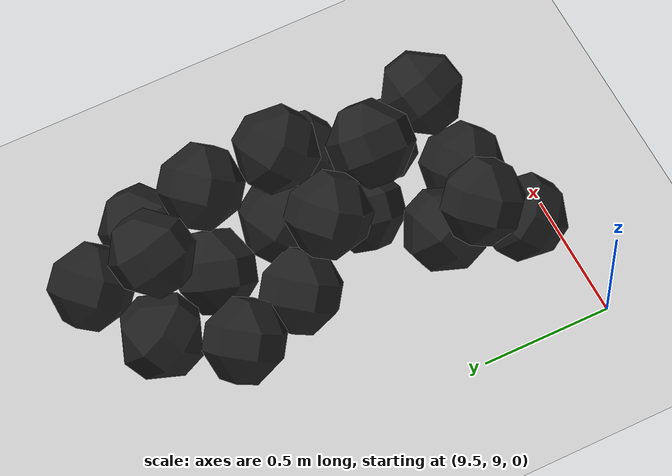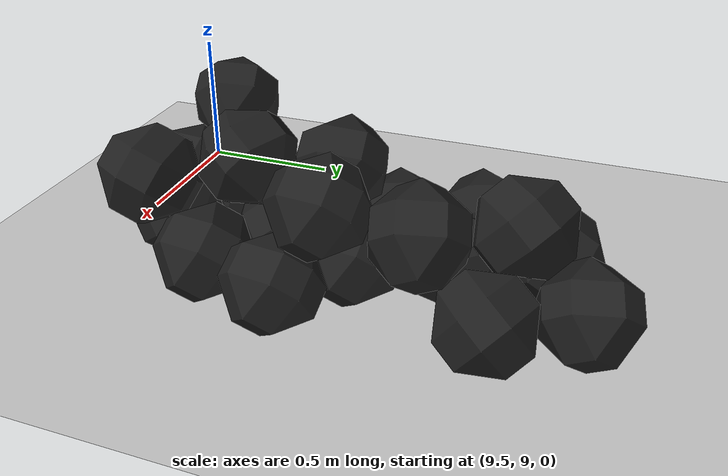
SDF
<sdf version="1.7">
 <world name="default">
  <model name="ground_plane">
   <static>1</static>
   <link name="link">
    <collision name="collision">
     <geometry><plane><normal>0 0 1</normal><size>100 100</size></plane></geometry>
     <surface><friction><ode><mu>100</mu><mu2>50</mu2></ode></friction></surface>
    </collision>
    <visual name="visual">
     <cast_shadows>0</cast_shadows>
     <geometry><plane><normal>0 0 1</normal><size>100 100</size></plane></geometry>
     <material>
      <script><uri>file://media/materials/scripts/gazebo.material</uri><name>Gazebo/Grey</name></script>
     </material>
    </visual>
   </link>
  </model>
  <model name="haoduomiantiaa_13">
   <link name="link_0">
    <inertial>
     <mass>0.2</mass>
     <inertia>
      <ixx>0.166667</ixx>
      <ixy>0</ixy>
      <ixz>0</ixz>
      <iyy>0.166667</iyy>
      <iyz>0</iyz>
      <izz>0.166667</izz>
     </inertia>
    </inertial>
    <visual name="visual">
     <geometry>
      <mesh>
       <uri>/home/lihaoyang/catkin_ws/src/pudong_gazebo/world/stl/haoduomianti.stl</uri>
       <scale>1 1 1</scale>
      </mesh>
     </geometry>
     <material>
      <lighting>1</lighting>
      <script><uri>file://media/materials/scripts/gazebo.material</uri><name>Gazebo/Black</name></script>
      <shader type="pixel"><normal_map>__default__</normal_map></shader>
      <ambient>0.3 0.3 0.3 1</ambient>
      <diffuse>0.7 0.7 0.7 1</diffuse>
      <specular>0.01 0.01 0.01 1</specular>
      <emissive>0 0 0 1</emissive>
     </material>
    </visual>
    <collision name="collision">
     <geometry>
      <mesh>
       <uri>/home/lihaoyang/catkin_ws/src/pudong_gazebo/world/stl/haoduomianti.stl</uri>
       <scale>1 1 1</scale>
      </mesh>
     </geometry>
     <surface>
      <friction>
       <ode><mu>1</mu><mu2>1</mu2><fdir1>0 0 0</fdir1><slip1>0</slip1><slip2>0</slip2></ode>
       <torsional>
        <coefficient>1</coefficient>
        <patch_radius>0</patch_radius>
        <surface_radius>0</surface_radius>
        <use_patch_radius>1</use_patch_radius>
        <ode><slip>0</slip></ode>
       </torsional>
      </friction>
      <bounce><restitution_coefficient>0</restitution_coefficient><threshold>1e+06</threshold></bounce>
      <contact>
       <collide_without_contact>0</collide_without_contact>
       <collide_without_contact_bitmask>1</collide_without_contact_bitmask>
       <collide_bitmask>1</collide_bitmask>
       <ode>
        <soft_cfm>0</soft_cfm>
        <soft_erp>0.2</soft_erp>
        <kp>1e+13</kp>
        <kd>1</kd>
        <max_vel>0.01</max_vel>
        <min_depth>0</min_depth>
       </ode>
       <bullet>
        <split_impulse>1</split_impulse>
        <split_impulse_penetration_threshold>-0.01</split_impulse_penetration_threshold>
        <soft_cfm>0</soft_cfm>
        <soft_erp>0.2</soft_erp>
        <kp>1e+13</kp>
        <kd>1</kd>
       </bullet>
      </contact>
     </surface>
    </collision>
   </link>
   <static>0</static>
   <pose>9.96238 9.47779 -0.082441 0.493908 -0.712701 3.09548</pose>
  </model>
  <model name="haoduomiantiaa_24">
   <link name="link_0">
    <inertial>
     <mass>0.2</mass>
     <inertia>
      <ixx>0.166667</ixx>
      <ixy>0</ixy>
      <ixz>0</ixz>
      <iyy>0.166667</iyy>
      <iyz>0</iyz>
      <izz>0.166667</izz>
     </inertia>
    </inertial>
    <visual name="visual">
     <geometry>
      <mesh>
       <uri>/home/lihaoyang/catkin_ws/src/pudong_gazebo/world/stl/haoduomianti.stl</uri>
       <scale>1 1 1</scale>
      </mesh>
     </geometry>
     <material>
      <lighting>1</lighting>
      <script><uri>file://media/materials/scripts/gazebo.material</uri><name>Gazebo/Black</name></script>
      <shader type="pixel"><normal_map>__default__</normal_map></shader>
      <ambient>0.3 0.3 0.3 1</ambient>
      <diffuse>0.7 0.7 0.7 1</diffuse>
      <specular>0.01 0.01 0.01 1</specular>
      <emissive>0 0 0 1</emissive>
     </material>
    </visual>
    <collision name="collision">
     <geometry>
      <mesh>
       <uri>/home/lihaoyang/catkin_ws/src/pudong_gazebo/world/stl/haoduomianti.stl</uri>
       <scale>1 1 1</scale>
      </mesh>
     </geometry>
     <surface>
      <friction>
       <ode><mu>1</mu><mu2>1</mu2><fdir1>0 0 0</fdir1><slip1>0</slip1><slip2>0</slip2></ode>
       <torsional>
        <coefficient>1</coefficient>
        <patch_radius>0</patch_radius>
        <surface_radius>0</surface_radius>
        <use_patch_radius>1</use_patch_radius>
        <ode><slip>0</slip></ode>
       </torsional>
      </friction>
      <bounce><restitution_coefficient>0</restitution_coefficient><threshold>1e+06</threshold></bounce>
      <contact>
       <collide_without_contact>0</collide_without_contact>
       <collide_without_contact_bitmask>1</collide_without_contact_bitmask>
       <collide_bitmask>1</collide_bitmask>
       <ode>
        <soft_cfm>0</soft_cfm>
        <soft_erp>0.2</soft_erp>
        <kp>1e+13</kp>
        <kd>1</kd>
        <max_vel>0.01</max_vel>
        <min_depth>0</min_depth>
       </ode>
       <bullet>
        <split_impulse>1</split_impulse>
        <split_impulse_penetration_threshold>-0.01</split_impulse_penetration_threshold>
        <soft_cfm>0</soft_cfm>
        <soft_erp>0.2</soft_erp>
        <kp>1e+13</kp>
        <kd>1</kd>
       </bullet>
      </contact>
     </surface>
    </collision>
   </link>
   <static>0</static>
   <pose>10.2743 10.4231 0.084902 0.85737 -0.556659 2.29048</pose>
  </model>
  <model name="haoduomiantiaa_25">
   <link name="link_0">
    <inertial>
     <mass>0.2</mass>
     <inertia>
      <ixx>0.166667</ixx>
      <ixy>0</ixy>
      <ixz>0</ixz>
      <iyy>0.166667</iyy>
      <iyz>0</iyz>
      <izz>0.166667</izz>
     </inertia>
    </inertial>
    <visual name="visual">
     <geometry>
      <mesh>
       <uri>/home/lihaoyang/catkin_ws/src/pudong_gazebo/world/stl/haoduomianti.stl</uri>
       <scale>1 1 1</scale>
      </mesh>
     </geometry>
     <material>
      <lighting>1</lighting>
      <script><uri>file://media/materials/scripts/gazebo.material</uri><name>Gazebo/Black</name></script>
      <shader type="pixel"><normal_map>__default__</normal_map></shader>
      <ambient>0.3 0.3 0.3 1</ambient>
      <diffuse>0.7 0.7 0.7 1</diffuse>
      <specular>0.01 0.01 0.01 1</specular>
      <emissive>0 0 0 1</emissive>
     </material>
    </visual>
    <collision name="collision">
     <geometry>
      <mesh>
       <uri>/home/lihaoyang/catkin_ws/src/pudong_gazebo/world/stl/haoduomianti.stl</uri>
       <scale>1 1 1</scale>
      </mesh>
     </geometry>
     <surface>
      <friction>
       <ode><mu>1</mu><mu2>1</mu2><fdir1>0 0 0</fdir1><slip1>0</slip1><slip2>0</slip2></ode>
       <torsional>
        <coefficient>1</coefficient>
        <patch_radius>0</patch_radius>
        <surface_radius>0</surface_radius>
        <use_patch_radius>1</use_patch_radius>
        <ode><slip>0</slip></ode>
       </torsional>
      </friction>
      <bounce><restitution_coefficient>0</restitution_coefficient><threshold>1e+06</threshold></bounce>
      <contact>
       <collide_without_contact>0</collide_without_contact>
       <collide_without_contact_bitmask>1</collide_without_contact_bitmask>
       <collide_bitmask>1</collide_bitmask>
       <ode>
        <soft_cfm>0</soft_cfm>
        <soft_erp>0.2</soft_erp>
        <kp>1e+13</kp>
        <kd>1</kd>
        <max_vel>0.01</max_vel>
        <min_depth>0</min_depth>
       </ode>
       <bullet>
        <split_impulse>1</split_impulse>
        <split_impulse_penetration_threshold>-0.01</split_impulse_penetration_threshold>
        <soft_cfm>0</soft_cfm>
        <soft_erp>0.2</soft_erp>
        <kp>1e+13</kp>
        <kd>1</kd>
       </bullet>
      </contact>
     </surface>
    </collision>
   </link>
   <static>0</static>
   <pose>9.9079 10.2622 -0.115495 0.785404 -0.615437 1.4444</pose>
  </model>
  <model name="haoduomiantiaa_37">
   <link name="link_0">
    <inertial>
     <mass>0.2</mass>
     <inertia>
      <ixx>0.166667</ixx>
      <ixy>0</ixy>
      <ixz>0</ixz>
      <iyy>0.166667</iyy>
      <iyz>0</iyz>
      <izz>0.166667</izz>
     </inertia>
    </inertial>
    <visual name="visual">
     <geometry>
      <mesh>
       <uri>/home/lihaoyang/catkin_ws/src/pudong_gazebo/world/stl/haoduomianti.stl</uri>
       <scale>1 1 1</scale>
      </mesh>
     </geometry>
     <material>
      <lighting>1</lighting>
      <script><uri>file://media/materials/scripts/gazebo.material</uri><name>Gazebo/Black</name></script>
      <shader type="pixel"><normal_map>__default__</normal_map></shader>
      <ambient>0.3 0.3 0.3 1</ambient>
      <diffuse>0.7 0.7 0.7 1</diffuse>
      <specular>0.01 0.01 0.01 1</specular>
      <emissive>0 0 0 1</emissive>
     </material>
    </visual>
    <collision name="collision">
     <geometry>
      <mesh>
       <uri>/home/lihaoyang/catkin_ws/src/pudong_gazebo/world/stl/haoduomianti.stl</uri>
       <scale>1 1 1</scale>
      </mesh>
     </geometry>
     <surface>
      <friction>
       <ode><mu>1</mu><mu2>1</mu2><fdir1>0 0 0</fdir1><slip1>0</slip1><slip2>0</slip2></ode>
       <torsional>
        <coefficient>1</coefficient>
        <patch_radius>0</patch_radius>
        <surface_radius>0</surface_radius>
        <use_patch_radius>1</use_patch_radius>
        <ode><slip>0</slip></ode>
       </torsional>
      </friction>
      <bounce><restitution_coefficient>0</restitution_coefficient><threshold>1e+06</threshold></bounce>
      <contact>
       <collide_without_contact>0</collide_without_contact>
       <collide_without_contact_bitmask>1</collide_without_contact_bitmask>
       <collide_bitmask>1</collide_bitmask>
       <ode>
        <soft_cfm>0</soft_cfm>
        <soft_erp>0.2</soft_erp>
        <kp>1e+13</kp>
        <kd>1</kd>
        <max_vel>0.01</max_vel>
        <min_depth>0</min_depth>
       </ode>
       <bullet>
        <split_impulse>1</split_impulse>
        <split_impulse_penetration_threshold>-0.01</split_impulse_penetration_threshold>
        <soft_cfm>0</soft_cfm>
        <soft_erp>0.2</soft_erp>
        <kp>1e+13</kp>
        <kd>1</kd>
       </bullet>
      </contact>
     </surface>
    </collision>
   </link>
   <static>0</static>
   <pose>10.0051 9.99559 -0.114513 0.751665 -0.630897 1.45488</pose>
  </model>
  <model name="haoduomiantiaa_42">
   <link name="link_0">
    <inertial>
     <mass>0.2</mass>
     <inertia>
      <ixx>0.166667</ixx>
      <ixy>0</ixy>
      <ixz>0</ixz>
      <iyy>0.166667</iyy>
      <iyz>0</iyz>
      <izz>0.166667</izz>
     </inertia>
    </inertial>
    <visual name="visual">
     <geometry>
      <mesh>
       <uri>/home/lihaoyang/catkin_ws/src/pudong_gazebo/world/stl/haoduomianti.stl</uri>
       <scale>1 1 1</scale>
      </mesh>
     </geometry>
     <material>
      <lighting>1</lighting>
      <script><uri>file://media/materials/scripts/gazebo.material</uri><name>Gazebo/Black</name></script>
      <shader type="pixel"><normal_map>__default__</normal_map></shader>
      <ambient>0.3 0.3 0.3 1</ambient>
      <diffuse>0.7 0.7 0.7 1</diffuse>
      <specular>0.01 0.01 0.01 1</specular>
      <emissive>0 0 0 1</emissive>
     </material>
    </visual>
    <collision name="collision">
     <geometry>
      <mesh>
       <uri>/home/lihaoyang/catkin_ws/src/pudong_gazebo/world/stl/haoduomianti.stl</uri>
       <scale>1 1 1</scale>
      </mesh>
     </geometry>
     <surface>
      <friction>
       <ode><mu>1</mu><mu2>1</mu2><fdir1>0 0 0</fdir1><slip1>0</slip1><slip2>0</slip2></ode>
       <torsional>
        <coefficient>1</coefficient>
        <patch_radius>0</patch_radius>
        <surface_radius>0</surface_radius>
        <use_patch_radius>1</use_patch_radius>
        <ode><slip>0</slip></ode>
       </torsional>
      </friction>
      <bounce><restitution_coefficient>0</restitution_coefficient><threshold>1e+06</threshold></bounce>
      <contact>
       <collide_without_contact>0</collide_without_contact>
       <collide_without_contact_bitmask>1</collide_without_contact_bitmask>
       <collide_bitmask>1</collide_bitmask>
       <ode>
        <soft_cfm>0</soft_cfm>
        <soft_erp>0.2</soft_erp>
        <kp>1e+13</kp>
        <kd>1</kd>
        <max_vel>0.01</max_vel>
        <min_depth>0</min_depth>
       </ode>
       <bullet>
        <split_impulse>1</split_impulse>
        <split_impulse_penetration_threshold>-0.01</split_impulse_penetration_threshold>
        <soft_cfm>0</soft_cfm>
        <soft_erp>0.2</soft_erp>
        <kp>1e+13</kp>
        <kd>1</kd>
       </bullet>
      </contact>
     </surface>
    </collision>
   </link>
   <static>0</static>
   <pose>10.2946 9.92072 -0.115497 0.785424 -0.615457 0.935842</pose>
  </model>
  <model name="haoduomiantiaa_48">
   <link name="link_0">
    <inertial>
     <mass>0.2</mass>
     <inertia>
      <ixx>0.166667</ixx>
      <ixy>0</ixy>
      <ixz>0</ixz>
      <iyy>0.166667</iyy>
      <iyz>0</iyz>
      <izz>0.166667</izz>
     </inertia>
    </inertial>
    <visual name="visual">
     <geometry>
      <mesh>
       <uri>/home/lihaoyang/catkin_ws/src/pudong_gazebo/world/stl/haoduomianti.stl</uri>
       <scale>1 1 1</scale>
      </mesh>
     </geometry>
     <material>
      <lighting>1</lighting>
      <script><uri>file://media/materials/scripts/gazebo.material</uri><name>Gazebo/Black</name></script>
      <shader type="pixel"><normal_map>__default__</normal_map></shader>
      <ambient>0.3 0.3 0.3 1</ambient>
      <diffuse>0.7 0.7 0.7 1</diffuse>
      <specular>0.01 0.01 0.01 1</specular>
      <emissive>0 0 0 1</emissive>
     </material>
    </visual>
    <collision name="collision">
     <geometry>
      <mesh>
       <uri>/home/lihaoyang/catkin_ws/src/pudong_gazebo/world/stl/haoduomianti.stl</uri>
       <scale>1 1 1</scale>
      </mesh>
     </geometry>
     <surface>
      <friction>
       <ode><mu>1</mu><mu2>1</mu2><fdir1>0 0 0</fdir1><slip1>0</slip1><slip2>0</slip2></ode>
       <torsional>
        <coefficient>1</coefficient>
        <patch_radius>0</patch_radius>
        <surface_radius>0</surface_radius>
        <use_patch_radius>1</use_patch_radius>
        <ode><slip>0</slip></ode>
       </torsional>
      </friction>
      <bounce><restitution_coefficient>0</restitution_coefficient><threshold>1e+06</threshold></bounce>
      <contact>
       <collide_without_contact>0</collide_without_contact>
       <collide_without_contact_bitmask>1</collide_without_contact_bitmask>
       <collide_bitmask>1</collide_bitmask>
       <ode>
        <soft_cfm>0</soft_cfm>
        <soft_erp>0.2</soft_erp>
        <kp>1e+13</kp>
        <kd>1</kd>
        <max_vel>0.01</max_vel>
        <min_depth>0</min_depth>
       </ode>
       <bullet>
        <split_impulse>1</split_impulse>
        <split_impulse_penetration_threshold>-0.01</split_impulse_penetration_threshold>
        <soft_cfm>0</soft_cfm>
        <soft_erp>0.2</soft_erp>
        <kp>1e+13</kp>
        <kd>1</kd>
       </bullet>
      </contact>
     </surface>
    </collision>
   </link>
   <static>0</static>
   <pose>10.4324 9.46719 -0.11555 0.785501 -0.615262 0.92615</pose>
  </model>
  <model name="haoduomiantiaa_63">
   <link name="link_0">
    <inertial>
     <mass>0.2</mass>
     <inertia>
      <ixx>0.166667</ixx>
      <ixy>0</ixy>
      <ixz>0</ixz>
      <iyy>0.166667</iyy>
      <iyz>0</iyz>
      <izz>0.166667</izz>
     </inertia>
    </inertial>
    <visual name="visual">
     <geometry>
      <mesh>
       <uri>/home/lihaoyang/catkin_ws/src/pudong_gazebo/world/stl/haoduomianti.stl</uri>
       <scale>1 1 1</scale>
      </mesh>
     </geometry>
     <material>
      <lighting>1</lighting>
      <script><uri>file://media/materials/scripts/gazebo.material</uri><name>Gazebo/Black</name></script>
      <shader type="pixel"><normal_map>__default__</normal_map></shader>
      <ambient>0.3 0.3 0.3 1</ambient>
      <diffuse>0.7 0.7 0.7 1</diffuse>
      <specular>0.01 0.01 0.01 1</specular>
      <emissive>0 0 0 1</emissive>
     </material>
    </visual>
    <collision name="collision">
     <geometry>
      <mesh>
       <uri>/home/lihaoyang/catkin_ws/src/pudong_gazebo/world/stl/haoduomianti.stl</uri>
       <scale>1 1 1</scale>
      </mesh>
     </geometry>
     <surface>
      <friction>
       <ode><mu>1</mu><mu2>1</mu2><fdir1>0 0 0</fdir1><slip1>0</slip1><slip2>0</slip2></ode>
       <torsional>
        <coefficient>1</coefficient>
        <patch_radius>0</patch_radius>
        <surface_radius>0</surface_radius>
        <use_patch_radius>1</use_patch_radius>
        <ode><slip>0</slip></ode>
       </torsional>
      </friction>
      <bounce><restitution_coefficient>0</restitution_coefficient><threshold>1e+06</threshold></bounce>
      <contact>
       <collide_without_contact>0</collide_without_contact>
       <collide_without_contact_bitmask>1</collide_without_contact_bitmask>
       <collide_bitmask>1</collide_bitmask>
       <ode>
        <soft_cfm>0</soft_cfm>
        <soft_erp>0.2</soft_erp>
        <kp>1e+13</kp>
        <kd>1</kd>
        <max_vel>0.01</max_vel>
        <min_depth>0</min_depth>
       </ode>
       <bullet>
        <split_impulse>1</split_impulse>
        <split_impulse_penetration_threshold>-0.01</split_impulse_penetration_threshold>
        <soft_cfm>0</soft_cfm>
        <soft_erp>0.2</soft_erp>
        <kp>1e+13</kp>
        <kd>1</kd>
       </bullet>
      </contact>
     </surface>
    </collision>
   </link>
   <static>0</static>
   <pose>10.2013 9.2257 -0.115505 0.785402 -0.615476 -0.953056</pose>
  </model>
  <model name="haoduomiantiaa_69">
   <link name="link_0">
    <inertial>
     <mass>0.2</mass>
     <inertia>
      <ixx>0.166667</ixx>
      <ixy>0</ixy>
      <ixz>0</ixz>
      <iyy>0.166667</iyy>
      <iyz>0</iyz>
      <izz>0.166667</izz>
     </inertia>
    </inertial>
    <visual name="visual">
     <geometry>
      <mesh>
       <uri>/home/lihaoyang/catkin_ws/src/pudong_gazebo/world/stl/haoduomianti.stl</uri>
       <scale>1 1 1</scale>
      </mesh>
     </geometry>
     <material>
      <lighting>1</lighting>
      <script><uri>file://media/materials/scripts/gazebo.material</uri><name>Gazebo/Black</name></script>
      <shader type="pixel"><normal_map>__default__</normal_map></shader>
      <ambient>0.3 0.3 0.3 1</ambient>
      <diffuse>0.7 0.7 0.7 1</diffuse>
      <specular>0.01 0.01 0.01 1</specular>
      <emissive>0 0 0 1</emissive>
     </material>
    </visual>
    <collision name="collision">
     <geometry>
      <mesh>
       <uri>/home/lihaoyang/catkin_ws/src/pudong_gazebo/world/stl/haoduomianti.stl</uri>
       <scale>1 1 1</scale>
      </mesh>
     </geometry>
     <surface>
      <friction>
       <ode><mu>1</mu><mu2>1</mu2><fdir1>0 0 0</fdir1><slip1>0</slip1><slip2>0</slip2></ode>
       <torsional>
        <coefficient>1</coefficient>
        <patch_radius>0</patch_radius>
        <surface_radius>0</surface_radius>
        <use_patch_radius>1</use_patch_radius>
        <ode><slip>0</slip></ode>
       </torsional>
      </friction>
      <bounce><restitution_coefficient>0</restitution_coefficient><threshold>1e+06</threshold></bounce>
      <contact>
       <collide_without_contact>0</collide_without_contact>
       <collide_without_contact_bitmask>1</collide_without_contact_bitmask>
       <collide_bitmask>1</collide_bitmask>
       <ode>
        <soft_cfm>0</soft_cfm>
        <soft_erp>0.2</soft_erp>
        <kp>1e+13</kp>
        <kd>1</kd>
        <max_vel>0.01</max_vel>
        <min_depth>0</min_depth>
       </ode>
       <bullet>
        <split_impulse>1</split_impulse>
        <split_impulse_penetration_threshold>-0.01</split_impulse_penetration_threshold>
        <soft_cfm>0</soft_cfm>
        <soft_erp>0.2</soft_erp>
        <kp>1e+13</kp>
        <kd>1</kd>
       </bullet>
      </contact>
     </surface>
    </collision>
   </link>
   <static>0</static>
   <pose>10.4359 9.86467 0.128337 0.768328 -0.621157 -1.12386</pose>
  </model>
  <model name="haoduomiantiaa_72">
   <link name="link_0">
    <inertial>
     <mass>0.2</mass>
     <inertia>
      <ixx>0.166667</ixx>
      <ixy>0</ixy>
      <ixz>0</ixz>
      <iyy>0.166667</iyy>
      <iyz>0</iyz>
      <izz>0.166667</izz>
     </inertia>
    </inertial>
    <visual name="visual">
     <geometry>
      <mesh>
       <uri>/home/lihaoyang/catkin_ws/src/pudong_gazebo/world/stl/haoduomianti.stl</uri>
       <scale>1 1 1</scale>
      </mesh>
     </geometry>
     <material>
      <lighting>1</lighting>
      <script><uri>file://media/materials/scripts/gazebo.material</uri><name>Gazebo/Black</name></script>
      <shader type="pixel"><normal_map>__default__</normal_map></shader>
      <ambient>0.3 0.3 0.3 1</ambient>
      <diffuse>0.7 0.7 0.7 1</diffuse>
      <specular>0.01 0.01 0.01 1</specular>
      <emissive>0 0 0 1</emissive>
     </material>
    </visual>
    <collision name="collision">
     <geometry>
      <mesh>
       <uri>/home/lihaoyang/catkin_ws/src/pudong_gazebo/world/stl/haoduomianti.stl</uri>
       <scale>1 1 1</scale>
      </mesh>
     </geometry>
     <surface>
      <friction>
       <ode><mu>1</mu><mu2>1</mu2><fdir1>0 0 0</fdir1><slip1>0</slip1><slip2>0</slip2></ode>
       <torsional>
        <coefficient>1</coefficient>
        <patch_radius>0</patch_radius>
        <surface_radius>0</surface_radius>
        <use_patch_radius>1</use_patch_radius>
        <ode><slip>0</slip></ode>
       </torsional>
      </friction>
      <bounce><restitution_coefficient>0</restitution_coefficient><threshold>1e+06</threshold></bounce>
      <contact>
       <collide_without_contact>0</collide_without_contact>
       <collide_without_contact_bitmask>1</collide_without_contact_bitmask>
       <collide_bitmask>1</collide_bitmask>
       <ode>
        <soft_cfm>0</soft_cfm>
        <soft_erp>0.2</soft_erp>
        <kp>1e+13</kp>
        <kd>1</kd>
        <max_vel>0.01</max_vel>
        <min_depth>0</min_depth>
       </ode>
       <bullet>
        <split_impulse>1</split_impulse>
        <split_impulse_penetration_threshold>-0.01</split_impulse_penetration_threshold>
        <soft_cfm>0</soft_cfm>
        <soft_erp>0.2</soft_erp>
        <kp>1e+13</kp>
        <kd>1</kd>
       </bullet>
      </contact>
     </surface>
    </collision>
   </link>
   <static>0</static>
   <pose>10.1258 9.78918 0.113631 0.704372 -0.513755 1.27496</pose>
  </model>
  <model name="haoduomiantiaa_82">
   <link name="link_0">
    <inertial>
     <mass>0.2</mass>
     <inertia>
      <ixx>0.166667</ixx>
      <ixy>0</ixy>
      <ixz>0</ixz>
      <iyy>0.166667</iyy>
      <iyz>0</iyz>
      <izz>0.166667</izz>
     </inertia>
    </inertial>
    <visual name="visual">
     <geometry>
      <mesh>
       <uri>/home/lihaoyang/catkin_ws/src/pudong_gazebo/world/stl/haoduomianti.stl</uri>
       <scale>1 1 1</scale>
      </mesh>
     </geometry>
     <material>
      <lighting>1</lighting>
      <script><uri>file://media/materials/scripts/gazebo.material</uri><name>Gazebo/Black</name></script>
      <shader type="pixel"><normal_map>__default__</normal_map></shader>
      <ambient>0.3 0.3 0.3 1</ambient>
      <diffuse>0.7 0.7 0.7 1</diffuse>
      <specular>0.01 0.01 0.01 1</specular>
      <emissive>0 0 0 1</emissive>
     </material>
    </visual>
    <collision name="collision">
     <geometry>
      <mesh>
       <uri>/home/lihaoyang/catkin_ws/src/pudong_gazebo/world/stl/haoduomianti.stl</uri>
       <scale>1 1 1</scale>
      </mesh>
     </geometry>
     <surface>
      <friction>
       <ode><mu>1</mu><mu2>1</mu2><fdir1>0 0 0</fdir1><slip1>0</slip1><slip2>0</slip2></ode>
       <torsional>
        <coefficient>1</coefficient>
        <patch_radius>0</patch_radius>
        <surface_radius>0</surface_radius>
        <use_patch_radius>1</use_patch_radius>
        <ode><slip>0</slip></ode>
       </torsional>
      </friction>
      <bounce><restitution_coefficient>0</restitution_coefficient><threshold>1e+06</threshold></bounce>
      <contact>
       <collide_without_contact>0</collide_without_contact>
       <collide_without_contact_bitmask>1</collide_without_contact_bitmask>
       <collide_bitmask>1</collide_bitmask>
       <ode>
        <soft_cfm>0</soft_cfm>
        <soft_erp>0.2</soft_erp>
        <kp>1e+13</kp>
        <kd>1</kd>
        <max_vel>0.01</max_vel>
        <min_depth>0</min_depth>
       </ode>
       <bullet>
        <split_impulse>1</split_impulse>
        <split_impulse_penetration_threshold>-0.01</split_impulse_penetration_threshold>
        <soft_cfm>0</soft_cfm>
        <soft_erp>0.2</soft_erp>
        <kp>1e+13</kp>
        <kd>1</kd>
       </bullet>
      </contact>
     </surface>
    </collision>
   </link>
   <static>0</static>
   <pose>10.3702 9.3369 0.135077 1.07136 -0.527132 0.338742</pose>
  </model>
  <model name="haoduomiantiaa_84">
   <link name="link_0">
    <inertial>
     <mass>0.2</mass>
     <inertia>
      <ixx>0.166667</ixx>
      <ixy>0</ixy>
      <ixz>0</ixz>
      <iyy>0.166667</iyy>
      <iyz>0</iyz>
      <izz>0.166667</izz>
     </inertia>
    </inertial>
    <visual name="visual">
     <geometry>
      <mesh>
       <uri>/home/lihaoyang/catkin_ws/src/pudong_gazebo/world/stl/haoduomianti.stl</uri>
       <scale>1 1 1</scale>
      </mesh>
     </geometry>
     <material>
      <lighting>1</lighting>
      <script><uri>file://media/materials/scripts/gazebo.material</uri><name>Gazebo/Black</name></script>
      <shader type="pixel"><normal_map>__default__</normal_map></shader>
      <ambient>0.3 0.3 0.3 1</ambient>
      <diffuse>0.7 0.7 0.7 1</diffuse>
      <specular>0.01 0.01 0.01 1</specular>
      <emissive>0 0 0 1</emissive>
     </material>
    </visual>
    <collision name="collision">
     <geometry>
      <mesh>
       <uri>/home/lihaoyang/catkin_ws/src/pudong_gazebo/world/stl/haoduomianti.stl</uri>
       <scale>1 1 1</scale>
      </mesh>
     </geometry>
     <surface>
      <friction>
       <ode><mu>1</mu><mu2>1</mu2><fdir1>0 0 0</fdir1><slip1>0</slip1><slip2>0</slip2></ode>
       <torsional>
        <coefficient>1</coefficient>
        <patch_radius>0</patch_radius>
        <surface_radius>0</surface_radius>
        <use_patch_radius>1</use_patch_radius>
        <ode><slip>0</slip></ode>
       </torsional>
      </friction>
      <bounce><restitution_coefficient>0</restitution_coefficient><threshold>1e+06</threshold></bounce>
      <contact>
       <collide_without_contact>0</collide_without_contact>
       <collide_without_contact_bitmask>1</collide_without_contact_bitmask>
       <collide_bitmask>1</collide_bitmask>
       <ode>
        <soft_cfm>0</soft_cfm>
        <soft_erp>0.2</soft_erp>
        <kp>1e+13</kp>
        <kd>1</kd>
        <max_vel>0.01</max_vel>
        <min_depth>0</min_depth>
       </ode>
       <bullet>
        <split_impulse>1</split_impulse>
        <split_impulse_penetration_threshold>-0.01</split_impulse_penetration_threshold>
        <soft_cfm>0</soft_cfm>
        <soft_erp>0.2</soft_erp>
        <kp>1e+13</kp>
        <kd>1</kd>
       </bullet>
      </contact>
     </surface>
    </collision>
   </link>
   <static>0</static>
   <pose>10.4263 10.1593 0.093804 0.82325 -0.675491 -2.89019</pose>
  </model>
  <model name="haoduomiantiaa_87">
   <link name="link_0">
    <inertial>
     <mass>0.2</mass>
     <inertia>
      <ixx>0.166667</ixx>
      <ixy>0</ixy>
      <ixz>0</ixz>
      <iyy>0.166667</iyy>
      <iyz>0</iyz>
      <izz>0.166667</izz>
     </inertia>
    </inertial>
    <visual name="visual">
     <geometry>
      <mesh>
       <uri>/home/lihaoyang/catkin_ws/src/pudong_gazebo/world/stl/haoduomianti.stl</uri>
       <scale>1 1 1</scale>
      </mesh>
     </geometry>
     <material>
      <lighting>1</lighting>
      <script><uri>file://media/materials/scripts/gazebo.material</uri><name>Gazebo/Black</name></script>
      <shader type="pixel"><normal_map>__default__</normal_map></shader>
      <ambient>0.3 0.3 0.3 1</ambient>
      <diffuse>0.7 0.7 0.7 1</diffuse>
      <specular>0.01 0.01 0.01 1</specular>
      <emissive>0 0 0 1</emissive>
     </material>
    </visual>
    <collision name="collision">
     <geometry>
      <mesh>
       <uri>/home/lihaoyang/catkin_ws/src/pudong_gazebo/world/stl/haoduomianti.stl</uri>
       <scale>1 1 1</scale>
      </mesh>
     </geometry>
     <surface>
      <friction>
       <ode><mu>1</mu><mu2>1</mu2><fdir1>0 0 0</fdir1><slip1>0</slip1><slip2>0</slip2></ode>
       <torsional>
        <coefficient>1</coefficient>
        <patch_radius>0</patch_radius>
        <surface_radius>0</surface_radius>
        <use_patch_radius>1</use_patch_radius>
        <ode><slip>0</slip></ode>
       </torsional>
      </friction>
      <bounce><restitution_coefficient>0</restitution_coefficient><threshold>1e+06</threshold></bounce>
      <contact>
       <collide_without_contact>0</collide_without_contact>
       <collide_without_contact_bitmask>1</collide_without_contact_bitmask>
       <collide_bitmask>1</collide_bitmask>
       <ode>
        <soft_cfm>0</soft_cfm>
        <soft_erp>0.2</soft_erp>
        <kp>1e+13</kp>
        <kd>1</kd>
        <max_vel>0.01</max_vel>
        <min_depth>0</min_depth>
       </ode>
       <bullet>
        <split_impulse>1</split_impulse>
        <split_impulse_penetration_threshold>-0.01</split_impulse_penetration_threshold>
        <soft_cfm>0</soft_cfm>
        <soft_erp>0.2</soft_erp>
        <kp>1e+13</kp>
        <kd>1</kd>
       </bullet>
      </contact>
     </surface>
    </collision>
   </link>
   <static>0</static>
   <pose>10.2018 9.63587 -0.115444 0.785459 -0.615489 -2.26171</pose>
  </model>
  <model name="haoduomiantiaa_98">
   <link name="link_0">
    <inertial>
     <mass>0.2</mass>
     <inertia>
      <ixx>0.166667</ixx>
      <ixy>0</ixy>
      <ixz>0</ixz>
      <iyy>0.166667</iyy>
      <iyz>0</iyz>
      <izz>0.166667</izz>
     </inertia>
    </inertial>
    <visual name="visual">
     <geometry>
      <mesh>
       <uri>/home/lihaoyang/catkin_ws/src/pudong_gazebo/world/stl/haoduomianti.stl</uri>
       <scale>1 1 1</scale>
      </mesh>
     </geometry>
     <material>
      <lighting>1</lighting>
      <script><uri>file://media/materials/scripts/gazebo.material</uri><name>Gazebo/Black</name></script>
      <shader type="pixel"><normal_map>__default__</normal_map></shader>
      <ambient>0.3 0.3 0.3 1</ambient>
      <diffuse>0.7 0.7 0.7 1</diffuse>
      <specular>0.01 0.01 0.01 1</specular>
      <emissive>0 0 0 1</emissive>
     </material>
    </visual>
    <collision name="collision">
     <geometry>
      <mesh>
       <uri>/home/lihaoyang/catkin_ws/src/pudong_gazebo/world/stl/haoduomianti.stl</uri>
       <scale>1 1 1</scale>
      </mesh>
     </geometry>
     <surface>
      <friction>
       <ode><mu>1</mu><mu2>1</mu2><fdir1>0 0 0</fdir1><slip1>0</slip1><slip2>0</slip2></ode>
       <torsional>
        <coefficient>1</coefficient>
        <patch_radius>0</patch_radius>
        <surface_radius>0</surface_radius>
        <use_patch_radius>1</use_patch_radius>
        <ode><slip>0</slip></ode>
       </torsional>
      </friction>
      <bounce><restitution_coefficient>0</restitution_coefficient><threshold>1e+06</threshold></bounce>
      <contact>
       <collide_without_contact>0</collide_without_contact>
       <collide_without_contact_bitmask>1</collide_without_contact_bitmask>
       <collide_bitmask>1</collide_bitmask>
       <ode>
        <soft_cfm>0</soft_cfm>
        <soft_erp>0.2</soft_erp>
        <kp>1e+13</kp>
        <kd>1</kd>
        <max_vel>0.01</max_vel>
        <min_depth>0</min_depth>
       </ode>
       <bullet>
        <split_impulse>1</split_impulse>
        <split_impulse_penetration_threshold>-0.01</split_impulse_penetration_threshold>
        <soft_cfm>0</soft_cfm>
        <soft_erp>0.2</soft_erp>
        <kp>1e+13</kp>
        <kd>1</kd>
       </bullet>
      </contact>
     </surface>
    </collision>
   </link>
   <static>0</static>
   <pose>9.91207 9.12632 -0.113509 0.822301 -0.632409 -1.18919</pose>
  </model>
  <model name="haoduomiantiaa_105">
   <link name="link_0">
    <inertial>
     <mass>0.2</mass>
     <inertia>
      <ixx>0.166667</ixx>
      <ixy>0</ixy>
      <ixz>0</ixz>
      <iyy>0.166667</iyy>
      <iyz>0</iyz>
      <izz>0.166667</izz>
     </inertia>
    </inertial>
    <visual name="visual">
     <geometry>
      <mesh>
       <uri>/home/lihaoyang/catkin_ws/src/pudong_gazebo/world/stl/haoduomianti.stl</uri>
       <scale>1 1 1</scale>
      </mesh>
     </geometry>
     <material>
      <lighting>1</lighting>
      <script><uri>file://media/materials/scripts/gazebo.material</uri><name>Gazebo/Black</name></script>
      <shader type="pixel"><normal_map>__default__</normal_map></shader>
      <ambient>0.3 0.3 0.3 1</ambient>
      <diffuse>0.7 0.7 0.7 1</diffuse>
      <specular>0.01 0.01 0.01 1</specular>
      <emissive>0 0 0 1</emissive>
     </material>
    </visual>
    <collision name="collision">
     <geometry>
      <mesh>
       <uri>/home/lihaoyang/catkin_ws/src/pudong_gazebo/world/stl/haoduomianti.stl</uri>
       <scale>1 1 1</scale>
      </mesh>
     </geometry>
     <surface>
      <friction>
       <ode><mu>1</mu><mu2>1</mu2><fdir1>0 0 0</fdir1><slip1>0</slip1><slip2>0</slip2></ode>
       <torsional>
        <coefficient>1</coefficient>
        <patch_radius>0</patch_radius>
        <surface_radius>0</surface_radius>
        <use_patch_radius>1</use_patch_radius>
        <ode><slip>0</slip></ode>
       </torsional>
      </friction>
      <bounce><restitution_coefficient>0</restitution_coefficient><threshold>1e+06</threshold></bounce>
      <contact>
       <collide_without_contact>0</collide_without_contact>
       <collide_without_contact_bitmask>1</collide_without_contact_bitmask>
       <collide_bitmask>1</collide_bitmask>
       <ode>
        <soft_cfm>0</soft_cfm>
        <soft_erp>0.2</soft_erp>
        <kp>1e+13</kp>
        <kd>1</kd>
        <max_vel>0.01</max_vel>
        <min_depth>0</min_depth>
       </ode>
       <bullet>
        <split_impulse>1</split_impulse>
        <split_impulse_penetration_threshold>-0.01</split_impulse_penetration_threshold>
        <soft_cfm>0</soft_cfm>
        <soft_erp>0.2</soft_erp>
        <kp>1e+13</kp>
        <kd>1</kd>
       </bullet>
      </contact>
     </surface>
    </collision>
   </link>
   <static>0</static>
   <pose>10.5183 9.74175 -0.114878 0.797678 -0.621323 -1.17442</pose>
  </model>
  <model name="haoduomiantiaa_107">
   <link name="link_0">
    <inertial>
     <mass>0.2</mass>
     <inertia>
      <ixx>0.166667</ixx>
      <ixy>0</ixy>
      <ixz>0</ixz>
      <iyy>0.166667</iyy>
      <iyz>0</iyz>
      <izz>0.166667</izz>
     </inertia>
    </inertial>
    <visual name="visual">
     <geometry>
      <mesh>
       <uri>/home/lihaoyang/catkin_ws/src/pudong_gazebo/world/stl/haoduomianti.stl</uri>
       <scale>1 1 1</scale>
      </mesh>
     </geometry>
     <material>
      <lighting>1</lighting>
      <script><uri>file://media/materials/scripts/gazebo.material</uri><name>Gazebo/Black</name></script>
      <shader type="pixel"><normal_map>__default__</normal_map></shader>
      <ambient>0.3 0.3 0.3 1</ambient>
      <diffuse>0.7 0.7 0.7 1</diffuse>
      <specular>0.01 0.01 0.01 1</specular>
      <emissive>0 0 0 1</emissive>
     </material>
    </visual>
    <collision name="collision">
     <geometry>
      <mesh>
       <uri>/home/lihaoyang/catkin_ws/src/pudong_gazebo/world/stl/haoduomianti.stl</uri>
       <scale>1 1 1</scale>
      </mesh>
     </geometry>
     <surface>
      <friction>
       <ode><mu>1</mu><mu2>1</mu2><fdir1>0 0 0</fdir1><slip1>0</slip1><slip2>0</slip2></ode>
       <torsional>
        <coefficient>1</coefficient>
        <patch_radius>0</patch_radius>
        <surface_radius>0</surface_radius>
        <use_patch_radius>1</use_patch_radius>
        <ode><slip>0</slip></ode>
       </torsional>
      </friction>
      <bounce><restitution_coefficient>0</restitution_coefficient><threshold>1e+06</threshold></bounce>
      <contact>
       <collide_without_contact>0</collide_without_contact>
       <collide_without_contact_bitmask>1</collide_without_contact_bitmask>
       <collide_bitmask>1</collide_bitmask>
       <ode>
        <soft_cfm>0</soft_cfm>
        <soft_erp>0.2</soft_erp>
        <kp>1e+13</kp>
        <kd>1</kd>
        <max_vel>0.01</max_vel>
        <min_depth>0</min_depth>
       </ode>
       <bullet>
        <split_impulse>1</split_impulse>
        <split_impulse_penetration_threshold>-0.01</split_impulse_penetration_threshold>
        <soft_cfm>0</soft_cfm>
        <soft_erp>0.2</soft_erp>
        <kp>1e+13</kp>
        <kd>1</kd>
       </bullet>
      </contact>
     </surface>
    </collision>
   </link>
   <static>0</static>
   <pose>10.356 10.6552 -0.115529 0.785372 -0.615499 -0.808703</pose>
  </model>
  <model name="haoduomiantiaa_112">
   <link name="link_0">
    <inertial>
     <mass>0.2</mass>
     <inertia>
      <ixx>0.166667</ixx>
      <ixy>0</ixy>
      <ixz>0</ixz>
      <iyy>0.166667</iyy>
      <iyz>0</iyz>
      <izz>0.166667</izz>
     </inertia>
    </inertial>
    <visual name="visual">
     <geometry>
      <mesh>
       <uri>/home/lihaoyang/catkin_ws/src/pudong_gazebo/world/stl/haoduomianti.stl</uri>
       <scale>1 1 1</scale>
      </mesh>
     </geometry>
     <material>
      <lighting>1</lighting>
      <script><uri>file://media/materials/scripts/gazebo.material</uri><name>Gazebo/Black</name></script>
      <shader type="pixel"><normal_map>__default__</normal_map></shader>
      <ambient>0.3 0.3 0.3 1</ambient>
      <diffuse>0.7 0.7 0.7 1</diffuse>
      <specular>0.01 0.01 0.01 1</specular>
      <emissive>0 0 0 1</emissive>
     </material>
    </visual>
    <collision name="collision">
     <geometry>
      <mesh>
       <uri>/home/lihaoyang/catkin_ws/src/pudong_gazebo/world/stl/haoduomianti.stl</uri>
       <scale>1 1 1</scale>
      </mesh>
     </geometry>
     <surface>
      <friction>
       <ode><mu>1</mu><mu2>1</mu2><fdir1>0 0 0</fdir1><slip1>0</slip1><slip2>0</slip2></ode>
       <torsional>
        <coefficient>1</coefficient>
        <patch_radius>0</patch_radius>
        <surface_radius>0</surface_radius>
        <use_patch_radius>1</use_patch_radius>
        <ode><slip>0</slip></ode>
       </torsional>
      </friction>
      <bounce><restitution_coefficient>0</restitution_coefficient><threshold>1e+06</threshold></bounce>
      <contact>
       <collide_without_contact>0</collide_without_contact>
       <collide_without_contact_bitmask>1</collide_without_contact_bitmask>
       <collide_bitmask>1</collide_bitmask>
       <ode>
        <soft_cfm>0</soft_cfm>
        <soft_erp>0.2</soft_erp>
        <kp>1e+13</kp>
        <kd>1</kd>
        <max_vel>0.01</max_vel>
        <min_depth>0</min_depth>
       </ode>
       <bullet>
        <split_impulse>1</split_impulse>
        <split_impulse_penetration_threshold>-0.01</split_impulse_penetration_threshold>
        <soft_cfm>0</soft_cfm>
        <soft_erp>0.2</soft_erp>
        <kp>1e+13</kp>
        <kd>1</kd>
       </bullet>
      </contact>
     </surface>
    </collision>
   </link>
   <static>0</static>
   <pose>10.0599 10.5185 -0.115489 0.785409 -0.61544 0.694634</pose>
  </model>
  <model name="haoduomiantiaa_113">
   <link name="link_0">
    <inertial>
     <mass>0.2</mass>
     <inertia>
      <ixx>0.166667</ixx>
      <ixy>0</ixy>
      <ixz>0</ixz>
      <iyy>0.166667</iyy>
      <iyz>0</iyz>
      <izz>0.166667</izz>
     </inertia>
    </inertial>
    <visual name="visual">
     <geometry>
      <mesh>
       <uri>/home/lihaoyang/catkin_ws/src/pudong_gazebo/world/stl/haoduomianti.stl</uri>
       <scale>1 1 1</scale>
      </mesh>
     </geometry>
     <material>
      <lighting>1</lighting>
      <script><uri>file://media/materials/scripts/gazebo.material</uri><name>Gazebo/Black</name></script>
      <shader type="pixel"><normal_map>__default__</normal_map></shader>
      <ambient>0.3 0.3 0.3 1</ambient>
      <diffuse>0.7 0.7 0.7 1</diffuse>
      <specular>0.01 0.01 0.01 1</specular>
      <emissive>0 0 0 1</emissive>
     </material>
    </visual>
    <collision name="collision">
     <geometry>
      <mesh>
       <uri>/home/lihaoyang/catkin_ws/src/pudong_gazebo/world/stl/haoduomianti.stl</uri>
       <scale>1 1 1</scale>
      </mesh>
     </geometry>
     <surface>
      <friction>
       <ode><mu>1</mu><mu2>1</mu2><fdir1>0 0 0</fdir1><slip1>0</slip1><slip2>0</slip2></ode>
       <torsional>
        <coefficient>1</coefficient>
        <patch_radius>0</patch_radius>
        <surface_radius>0</surface_radius>
        <use_patch_radius>1</use_patch_radius>
        <ode><slip>0</slip></ode>
       </torsional>
      </friction>
      <bounce><restitution_coefficient>0</restitution_coefficient><threshold>1e+06</threshold></bounce>
      <contact>
       <collide_without_contact>0</collide_without_contact>
       <collide_without_contact_bitmask>1</collide_without_contact_bitmask>
       <collide_bitmask>1</collide_bitmask>
       <ode>
        <soft_cfm>0</soft_cfm>
        <soft_erp>0.2</soft_erp>
        <kp>1e+13</kp>
        <kd>1</kd>
        <max_vel>0.01</max_vel>
        <min_depth>0</min_depth>
       </ode>
       <bullet>
        <split_impulse>1</split_impulse>
        <split_impulse_penetration_threshold>-0.01</split_impulse_penetration_threshold>
        <soft_cfm>0</soft_cfm>
        <soft_erp>0.2</soft_erp>
        <kp>1e+13</kp>
        <kd>1</kd>
       </bullet>
      </contact>
     </surface>
    </collision>
   </link>
   <static>0</static>
   <pose>10.2082 10.2279 -0.115461 0.784527 -0.615872 -0.304355</pose>
  </model>
  <model name="haoduomiantiaa_121">
   <link name="link_0">
    <inertial>
     <mass>0.2</mass>
     <inertia>
      <ixx>0.166667</ixx>
      <ixy>0</ixy>
      <ixz>0</ixz>
      <iyy>0.166667</iyy>
      <iyz>0</iyz>
      <izz>0.166667</izz>
     </inertia>
    </inertial>
    <visual name="visual">
     <geometry>
      <mesh>
       <uri>/home/lihaoyang/catkin_ws/src/pudong_gazebo/world/stl/haoduomianti.stl</uri>
       <scale>1 1 1</scale>
      </mesh>
     </geometry>
     <material>
      <lighting>1</lighting>
      <script><uri>file://media/materials/scripts/gazebo.material</uri><name>Gazebo/Black</name></script>
      <shader type="pixel"><normal_map>__default__</normal_map></shader>
      <ambient>0.3 0.3 0.3 1</ambient>
      <diffuse>0.7 0.7 0.7 1</diffuse>
      <specular>0.01 0.01 0.01 1</specular>
      <emissive>0 0 0 1</emissive>
     </material>
    </visual>
    <collision name="collision">
     <geometry>
      <mesh>
       <uri>/home/lihaoyang/catkin_ws/src/pudong_gazebo/world/stl/haoduomianti.stl</uri>
       <scale>1 1 1</scale>
      </mesh>
     </geometry>
     <surface>
      <friction>
       <ode><mu>1</mu><mu2>1</mu2><fdir1>0 0 0</fdir1><slip1>0</slip1><slip2>0</slip2></ode>
       <torsional>
        <coefficient>1</coefficient>
        <patch_radius>0</patch_radius>
        <surface_radius>0</surface_radius>
        <use_patch_radius>1</use_patch_radius>
        <ode><slip>0</slip></ode>
       </torsional>
      </friction>
      <bounce><restitution_coefficient>0</restitution_coefficient><threshold>1e+06</threshold></bounce>
      <contact>
       <collide_without_contact>0</collide_without_contact>
       <collide_without_contact_bitmask>1</collide_without_contact_bitmask>
       <collide_bitmask>1</collide_bitmask>
       <ode>
        <soft_cfm>0</soft_cfm>
        <soft_erp>0.2</soft_erp>
        <kp>1e+13</kp>
        <kd>1</kd>
        <max_vel>0.01</max_vel>
        <min_depth>0</min_depth>
       </ode>
       <bullet>
        <split_impulse>1</split_impulse>
        <split_impulse_penetration_threshold>-0.01</split_impulse_penetration_threshold>
        <soft_cfm>0</soft_cfm>
        <soft_erp>0.2</soft_erp>
        <kp>1e+13</kp>
        <kd>1</kd>
       </bullet>
      </contact>
     </surface>
    </collision>
   </link>
   <static>0</static>
   <pose>10.4934 10.3887 -0.115566 0.785417 -0.615402 2.21689</pose>
  </model>
  <model name="haoduomiantiaa_126">
   <link name="link_0">
    <inertial>
     <mass>0.2</mass>
     <inertia>
      <ixx>0.166667</ixx>
      <ixy>0</ixy>
      <ixz>0</ixz>
      <iyy>0.166667</iyy>
      <iyz>0</iyz>
      <izz>0.166667</izz>
     </inertia>
    </inertial>
    <visual name="visual">
     <geometry>
      <mesh>
       <uri>/home/lihaoyang/catkin_ws/src/pudong_gazebo/world/stl/haoduomianti.stl</uri>
       <scale>1 1 1</scale>
      </mesh>
     </geometry>
     <material>
      <lighting>1</lighting>
      <script><uri>file://media/materials/scripts/gazebo.material</uri><name>Gazebo/Black</name></script>
      <shader type="pixel"><normal_map>__default__</normal_map></shader>
      <ambient>0.3 0.3 0.3 1</ambient>
      <diffuse>0.7 0.7 0.7 1</diffuse>
      <specular>0.01 0.01 0.01 1</specular>
      <emissive>0 0 0 1</emissive>
     </material>
    </visual>
    <collision name="collision">
     <geometry>
      <mesh>
       <uri>/home/lihaoyang/catkin_ws/src/pudong_gazebo/world/stl/haoduomianti.stl</uri>
       <scale>1 1 1</scale>
      </mesh>
     </geometry>
     <surface>
      <friction>
       <ode><mu>1</mu><mu2>1</mu2><fdir1>0 0 0</fdir1><slip1>0</slip1><slip2>0</slip2></ode>
       <torsional>
        <coefficient>1</coefficient>
        <patch_radius>0</patch_radius>
        <surface_radius>0</surface_radius>
        <use_patch_radius>1</use_patch_radius>
        <ode><slip>0</slip></ode>
       </torsional>
      </friction>
      <bounce><restitution_coefficient>0</restitution_coefficient><threshold>1e+06</threshold></bounce>
      <contact>
       <collide_without_contact>0</collide_without_contact>
       <collide_without_contact_bitmask>1</collide_without_contact_bitmask>
       <collide_bitmask>1</collide_bitmask>
       <ode>
        <soft_cfm>0</soft_cfm>
        <soft_erp>0.2</soft_erp>
        <kp>1e+13</kp>
        <kd>1</kd>
        <max_vel>0.01</max_vel>
        <min_depth>0</min_depth>
       </ode>
       <bullet>
        <split_impulse>1</split_impulse>
        <split_impulse_penetration_threshold>-0.01</split_impulse_penetration_threshold>
        <soft_cfm>0</soft_cfm>
        <soft_erp>0.2</soft_erp>
        <kp>1e+13</kp>
        <kd>1</kd>
       </bullet>
      </contact>
     </surface>
    </collision>
   </link>
   <static>0</static>
   <pose>9.92591 9.31362 0.180464 0.88675 -0.470565 -2.87269</pose>
  </model>
  <model name="haoduomiantiaa_128">
   <link name="link_0">
    <inertial>
     <mass>0.2</mass>
     <inertia>
      <ixx>0.166667</ixx>
      <ixy>0</ixy>
      <ixz>0</ixz>
      <iyy>0.166667</iyy>
      <iyz>0</iyz>
      <izz>0.166667</izz>
     </inertia>
    </inertial>
    <visual name="visual">
     <geometry>
      <mesh>
       <uri>/home/lihaoyang/catkin_ws/src/pudong_gazebo/world/stl/haoduomianti.stl</uri>
       <scale>1 1 1</scale>
      </mesh>
     </geometry>
     <material>
      <lighting>1</lighting>
      <script><uri>file://media/materials/scripts/gazebo.material</uri><name>Gazebo/Black</name></script>
      <shader type="pixel"><normal_map>__default__</normal_map></shader>
      <ambient>0.3 0.3 0.3 1</ambient>
      <diffuse>0.7 0.7 0.7 1</diffuse>
      <specular>0.01 0.01 0.01 1</specular>
      <emissive>0 0 0 1</emissive>
     </material>
    </visual>
    <collision name="collision">
     <geometry>
      <mesh>
       <uri>/home/lihaoyang/catkin_ws/src/pudong_gazebo/world/stl/haoduomianti.stl</uri>
       <scale>1 1 1</scale>
      </mesh>
     </geometry>
     <surface>
      <friction>
       <ode><mu>1</mu><mu2>1</mu2><fdir1>0 0 0</fdir1><slip1>0</slip1><slip2>0</slip2></ode>
       <torsional>
        <coefficient>1</coefficient>
        <patch_radius>0</patch_radius>
        <surface_radius>0</surface_radius>
        <use_patch_radius>1</use_patch_radius>
        <ode><slip>0</slip></ode>
       </torsional>
      </friction>
      <bounce><restitution_coefficient>0</restitution_coefficient><threshold>1e+06</threshold></bounce>
      <contact>
       <collide_without_contact>0</collide_without_contact>
       <collide_without_contact_bitmask>1</collide_without_contact_bitmask>
       <collide_bitmask>1</collide_bitmask>
       <ode>
        <soft_cfm>0</soft_cfm>
        <soft_erp>0.2</soft_erp>
        <kp>1e+13</kp>
        <kd>1</kd>
        <max_vel>0.01</max_vel>
        <min_depth>0</min_depth>
       </ode>
       <bullet>
        <split_impulse>1</split_impulse>
        <split_impulse_penetration_threshold>-0.01</split_impulse_penetration_threshold>
        <soft_cfm>0</soft_cfm>
        <soft_erp>0.2</soft_erp>
        <kp>1e+13</kp>
        <kd>1</kd>
       </bullet>
      </contact>
     </surface>
    </collision>
   </link>
   <static>0</static>
   <pose>10.2747 9.58972 0.169793 0.90155 -0.583394 0.000744</pose>
  </model>
 </world>
</sdf>
